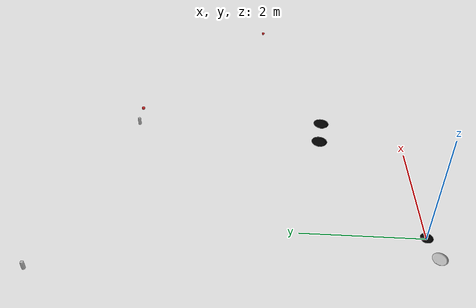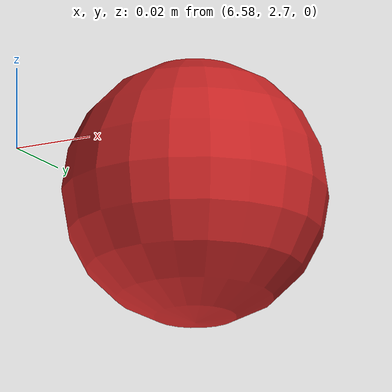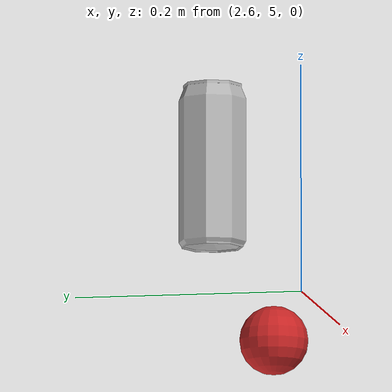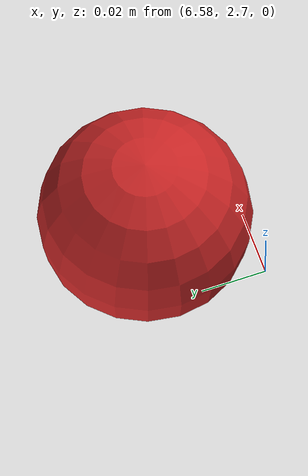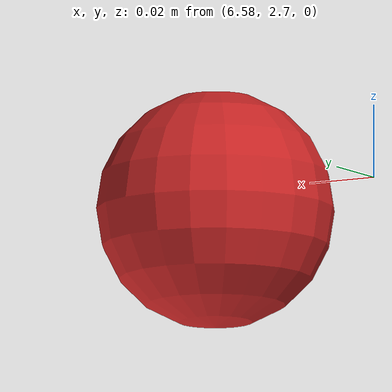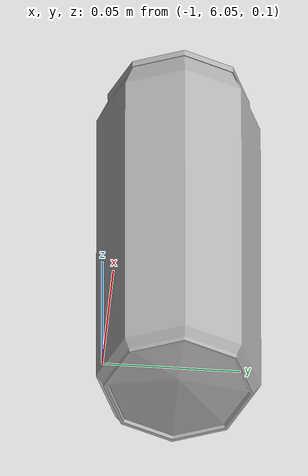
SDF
<?xml version='1.0'?>
<sdf version='1.7'>
  <model name='Ecoforms_Plant_Container_S14Turquoise1'>
    <link name='link_0'>
      <self_collide>0</self_collide>
      <inertial>
        <pose>0 0 0 0 -0 0</pose>
        <inertia>
          <ixx>1</ixx>
          <ixy>0</ixy>
          <ixz>0</ixz>
          <iyy>1</iyy>
          <iyz>0</iyz>
          <izz>1</izz>
        </inertia>
        <mass>1</mass>
      </inertial>
      <enable_wind>0</enable_wind>
      <kinematic>0</kinematic>
      <pose>0 0 0 0 -0 0</pose>
      <gravity>1</gravity>
      <visual name='visual'>
        <geometry>
          <mesh>
            <uri>/root/practice_ws/models/Ecoforms_Plant_Container_S14Turquoise/meshes/model.obj</uri>
            <scale>1.4 1.4 1.3</scale>
          </mesh>
        </geometry>
        <material>
          <shader type='pixel'>
            <normal_map>__default__</normal_map>
          </shader>
          <script>
            <name>ModelPreview_1::link_0::visual_MATERIAL_</name>
            <uri>__default__</uri>
          </script>
          <ambient>0 0 0 1</ambient>
          <diffuse>0 0 0 1</diffuse>
          <specular>0 0 0 1</specular>
          <emissive>0 0 0 1</emissive>
        </material>
        <pose>0 0 0 0 -0 0</pose>
        <transparency>0</transparency>
        <cast_shadows>1</cast_shadows>
      </visual>
      <collision name='collision_0'>
        <laser_retro>0</laser_retro>
        <max_contacts>10</max_contacts>
        <pose>0 0 0 0 -0 0</pose>
        <geometry>
          <mesh>
            <uri>/root/practice_ws/models/Ecoforms_Plant_Container_S14Turquoise/meshes/model.obj</uri>
            <scale>1 1 1</scale>
          </mesh>
        </geometry>
        <surface>
          <friction>
            <ode>
              <mu>1</mu>
              <mu2>1</mu2>
              <fdir1>0 0 0</fdir1>
              <slip1>0</slip1>
              <slip2>0</slip2>
            </ode>
            <torsional>
              <coefficient>1</coefficient>
              <patch_radius>0</patch_radius>
              <surface_radius>0</surface_radius>
              <use_patch_radius>1</use_patch_radius>
              <ode>
                <slip>0</slip>
              </ode>
            </torsional>
          </friction>
          <bounce>
            <restitution_coefficient>0</restitution_coefficient>
            <threshold>1e+06</threshold>
          </bounce>
          <contact>
            <collide_without_contact>0</collide_without_contact>
            <collide_without_contact_bitmask>1</collide_without_contact_bitmask>
            <collide_bitmask>1</collide_bitmask>
            <ode>
              <soft_cfm>0</soft_cfm>
              <soft_erp>0.2</soft_erp>
              <kp>1e+13</kp>
              <kd>1</kd>
              <max_vel>0.01</max_vel>
              <min_depth>0</min_depth>
            </ode>
            <bullet>
              <split_impulse>1</split_impulse>
              <split_impulse_penetration_threshold>-0.01</split_impulse_penetration_threshold>
              <soft_cfm>0</soft_cfm>
              <soft_erp>0.2</soft_erp>
              <kp>1e+13</kp>
              <kd>1</kd>
            </bullet>
          </contact>
        </surface>
      </collision>
    </link>
    <link name='link_0_clone_clone'>
      <self_collide>0</self_collide>
      <inertial>
        <pose>0 0 0 0 -0 0</pose>
        <inertia>
          <ixx>1</ixx>
          <ixy>0</ixy>
          <ixz>0</ixz>
          <iyy>1</iyy>
          <iyz>0</iyz>
          <izz>1</izz>
        </inertia>
        <mass>1</mass>
      </inertial>
      <enable_wind>0</enable_wind>
      <kinematic>0</kinematic>
      <pose>2.27715 1.55022 0.00193 0.023311 0.012547 0.000153</pose>
      <gravity>1</gravity>
      <visual name='visual'>
        <geometry>
          <mesh>
            <uri>/root/practice_ws/models/Ecoforms_Plant_Container_S14Turquoise/meshes/model.obj</uri>
            <scale>2 2 1.6</scale>
          </mesh>
        </geometry>
        <material>
          <shader type='pixel'>
            <normal_map>__default__</normal_map>
          </shader>
          <script>
            <name>ModelPreview_1::link_0::visual_MATERIAL_</name>
            <uri>__default__</uri>
          </script>
          <ambient>0 0 0 1</ambient>
          <diffuse>0 0 0 1</diffuse>
          <specular>0 0 0 1</specular>
          <emissive>0 0 0 1</emissive>
        </material>
        <pose>0 0 0 0 -0 0</pose>
        <transparency>0</transparency>
        <cast_shadows>1</cast_shadows>
      </visual>
      <collision name='collision_0'>
        <laser_retro>0</laser_retro>
        <max_contacts>10</max_contacts>
        <pose>0 0 0 0 -0 0</pose>
        <geometry>
          <mesh>
            <uri>/root/practice_ws/models/Ecoforms_Plant_Container_S14Turquoise/meshes/model.obj</uri>
            <scale>1 1 1</scale>
          </mesh>
        </geometry>
        <surface>
          <friction>
            <ode>
              <mu>1</mu>
              <mu2>1</mu2>
              <fdir1>0 0 0</fdir1>
              <slip1>0</slip1>
              <slip2>0</slip2>
            </ode>
            <torsional>
              <coefficient>1</coefficient>
              <patch_radius>0</patch_radius>
              <surface_radius>0</surface_radius>
              <use_patch_radius>1</use_patch_radius>
              <ode>
                <slip>0</slip>
              </ode>
            </torsional>
          </friction>
          <bounce>
            <restitution_coefficient>0</restitution_coefficient>
            <threshold>1e+06</threshold>
          </bounce>
          <contact>
            <collide_without_contact>0</collide_without_contact>
            <collide_without_contact_bitmask>1</collide_without_contact_bitmask>
            <collide_bitmask>1</collide_bitmask>
            <ode>
              <soft_cfm>0</soft_cfm>
              <soft_erp>0.2</soft_erp>
              <kp>1e+13</kp>
              <kd>1</kd>
              <max_vel>0.01</max_vel>
              <min_depth>0</min_depth>
            </ode>
            <bullet>
              <split_impulse>1</split_impulse>
              <split_impulse_penetration_threshold>-0.01</split_impulse_penetration_threshold>
              <soft_cfm>0</soft_cfm>
              <soft_erp>0.2</soft_erp>
              <kp>1e+13</kp>
              <kd>1</kd>
            </bullet>
          </contact>
        </surface>
      </collision>
    </link>
    <link name='link_0_clone_clone_clone'>
      <self_collide>0</self_collide>
      <inertial>
        <pose>0 0 0 0 -0 0</pose>
        <inertia>
          <ixx>1</ixx>
          <ixy>0</ixy>
          <ixz>0</ixz>
          <iyy>1</iyy>
          <iyz>0</iyz>
          <izz>1</izz>
        </inertia>
        <mass>1</mass>
      </inertial>
      <enable_wind>0</enable_wind>
      <kinematic>0</kinematic>
      <pose>2.84293 1.48428 0.001392 0.034969 0.018818 0.000339</pose>
      <gravity>1</gravity>
      <visual name='visual'>
        <geometry>
          <mesh>
            <uri>/root/practice_ws/models/Ecoforms_Plant_Container_S14Turquoise/meshes/model.obj</uri>
            <scale>2 2 1.6</scale>
          </mesh>
        </geometry>
        <material>
          <shader type='pixel'>
            <normal_map>__default__</normal_map>
          </shader>
          <script>
            <name>ModelPreview_1::link_0::visual_MATERIAL_</name>
            <uri>__default__</uri>
          </script>
          <ambient>0 0 0 1</ambient>
          <diffuse>0 0 0 1</diffuse>
          <specular>0 0 0 1</specular>
          <emissive>0 0 0 1</emissive>
        </material>
        <pose>0 0 0 0 -0 0</pose>
        <transparency>0</transparency>
        <cast_shadows>1</cast_shadows>
      </visual>
      <collision name='collision_0'>
        <laser_retro>0</laser_retro>
        <max_contacts>10</max_contacts>
        <pose>0 0 0 0 -0 0</pose>
        <geometry>
          <mesh>
            <uri>/root/practice_ws/models/Ecoforms_Plant_Container_S14Turquoise/meshes/model.obj</uri>
            <scale>1 1 1</scale>
          </mesh>
        </geometry>
        <surface>
          <friction>
            <ode>
              <mu>1</mu>
              <mu2>1</mu2>
              <fdir1>0 0 0</fdir1>
              <slip1>0</slip1>
              <slip2>0</slip2>
            </ode>
            <torsional>
              <coefficient>1</coefficient>
              <patch_radius>0</patch_radius>
              <surface_radius>0</surface_radius>
              <use_patch_radius>1</use_patch_radius>
              <ode>
                <slip>0</slip>
              </ode>
            </torsional>
          </friction>
          <bounce>
            <restitution_coefficient>0</restitution_coefficient>
            <threshold>1e+06</threshold>
          </bounce>
          <contact>
            <collide_without_contact>0</collide_without_contact>
            <collide_without_contact_bitmask>1</collide_without_contact_bitmask>
            <collide_bitmask>1</collide_bitmask>
            <ode>
              <soft_cfm>0</soft_cfm>
              <soft_erp>0.2</soft_erp>
              <kp>1e+13</kp>
              <kd>1</kd>
              <max_vel>0.01</max_vel>
              <min_depth>0</min_depth>
            </ode>
            <bullet>
              <split_impulse>1</split_impulse>
              <split_impulse_penetration_threshold>-0.01</split_impulse_penetration_threshold>
              <soft_cfm>0</soft_cfm>
              <soft_erp>0.2</soft_erp>
              <kp>1e+13</kp>
              <kd>1</kd>
            </bullet>
          </contact>
        </surface>
      </collision>
    </link>
    <model name='Coke'>
      <static>0</static>
      <link name='body'>
        <pose>0 0 0 0 -0 0</pose>
        <visual name='visual'>
          <geometry>
            <mesh>
              <uri>model://Coke/meshes/coke.obj</uri>
            </mesh>
          </geometry>
        </visual>
        <collision name='collision'>
          <geometry>
            <mesh>
              <uri>model://Coke/meshes/coke.obj</uri>
            </mesh>
          </geometry>
        </collision>
        <inertial>
          <mass>0.03</mass>
          <inertia>
            <ixx>0.00336667</ixx>
            <ixy>0</ixy>
            <ixz>0</ixz>
            <iyy>0.000866667</iyy>
            <iyz>0</iyz>
            <izz>0.00416667</izz>
          </inertia>
        </inertial>
      </link>
      <pose>2.61423 5.08113 0.04282 0 -0 0</pose>
    </model>
    <model name='Coke_0'>
      <static>0</static>
      <link name='body'>
        <pose>0 0 0 0 -0 0</pose>
        <visual name='visual'>
          <geometry>
            <mesh>
              <uri>model://Coke/meshes/coke.obj</uri>
            </mesh>
          </geometry>
        </visual>
        <collision name='collision'>
          <geometry>
            <mesh>
              <uri>model://Coke/meshes/coke.obj</uri>
            </mesh>
          </geometry>
        </collision>
        <inertial>
          <mass>0.03</mass>
          <inertia>
            <ixx>0.00336667</ixx>
            <ixy>0</ixy>
            <ixz>0</ixz>
            <iyy>0.000866667</iyy>
            <iyz>0</iyz>
            <izz>0.00416667</izz>
          </inertia>
        </inertial>
      </link>
      <pose>-0.987178 6.0767 0.077021 0 -0 0</pose>
    </model>
    <model name='Ecoforms_Plant_Container_S14Turquoise'>
      <link name='link_0'>
        <visual name='visual'>
          <geometry>
            <mesh>
              <uri>meshes/model.obj</uri>
            </mesh>
          </geometry>
        </visual>
        <collision name='collision_0'>
          <geometry>
            <mesh>
              <uri>meshes/model.obj</uri>
            </mesh>
          </geometry>
          <max_contacts>10</max_contacts>
          <surface>
            <contact>
              <ode/>
            </contact>
            <bounce/>
            <friction>
              <torsional>
                <ode/>
              </torsional>
              <ode/>
            </friction>
          </surface>
        </collision>
        <self_collide>0</self_collide>
        <inertial>
          <pose>0 0 0 0 -0 0</pose>
          <inertia>
            <ixx>1</ixx>
            <ixy>0</ixy>
            <ixz>0</ixz>
            <iyy>1</iyy>
            <iyz>0</iyz>
            <izz>1</izz>
          </inertia>
          <mass>1</mass>
        </inertial>
        <enable_wind>0</enable_wind>
        <kinematic>0</kinematic>
      </link>
      <pose>-0.399833 -0.119244 0.001119 0 -0 0</pose>
    </model>
    <model name='orange_ball'>
      <link name='ball'>
        <inertial>
          <mass>0.03</mass>
          <inertia>
            <ixx>1.268e-05</ixx>
            <iyy>1.268e-05</iyy>
            <izz>1.268e-05</izz>
            <ixy>0</ixy>
            <ixz>0</ixz>
            <iyz>0</iyz>
          </inertia>
          <pose>0 0 0 0 -0 0</pose>
        </inertial>
        <self_collide>0</self_collide>
        <enable_wind>0</enable_wind>
        <kinematic>0</kinematic>
        <pose>0 0 0 0 -0 0</pose>
        <gravity>1</gravity>
        <visual name='visual'>
          <geometry>
            <sphere>
              <radius>0.0325</radius>
            </sphere>
          </geometry>
          <material>
            <script>
              <uri>file://media/materials/scripts/gazebo.material</uri>
              <name>Gazebo/RedBright</name>
            </script>
            <shader type='pixel'>
              <normal_map>__default__</normal_map>
            </shader>
          </material>
          <pose>0 0 0 0 -0 0</pose>
          <transparency>0</transparency>
          <cast_shadows>1</cast_shadows>
        </visual>
        <collision name='collision'>
          <laser_retro>0</laser_retro>
          <max_contacts>10</max_contacts>
          <pose>0 0 0 0 -0 0</pose>
          <geometry>
            <sphere>
              <radius>0.0325</radius>
            </sphere>
          </geometry>
          <surface>
            <friction>
              <ode>
                <mu>1</mu>
                <mu2>1</mu2>
                <fdir1>0 0 0</fdir1>
                <slip1>0</slip1>
                <slip2>0</slip2>
              </ode>
              <torsional>
                <coefficient>1</coefficient>
                <patch_radius>0</patch_radius>
                <surface_radius>0</surface_radius>
                <use_patch_radius>1</use_patch_radius>
                <ode>
                  <slip>0</slip>
                </ode>
              </torsional>
            </friction>
            <bounce>
              <restitution_coefficient>0</restitution_coefficient>
              <threshold>1e+06</threshold>
            </bounce>
            <contact>
              <collide_without_contact>0</collide_without_contact>
              <collide_without_contact_bitmask>1</collide_without_contact_bitmask>
              <collide_bitmask>1</collide_bitmask>
              <ode>
                <soft_cfm>0</soft_cfm>
                <soft_erp>0.2</soft_erp>
                <kp>1e+13</kp>
                <kd>1</kd>
                <max_vel>0.01</max_vel>
                <min_depth>0</min_depth>
              </ode>
              <bullet>
                <split_impulse>1</split_impulse>
                <split_impulse_penetration_threshold>-0.01</split_impulse_penetration_threshold>
                <soft_cfm>0</soft_cfm>
                <soft_erp>0.2</soft_erp>
                <kp>1e+13</kp>
                <kd>1</kd>
              </bullet>
            </contact>
          </surface>
        </collision>
      </link>
      <static>0</static>
      <allow_auto_disable>1</allow_auto_disable>
      <pose>3.15033 5.12108 0.039922 0 -0 0</pose>
    </model>
    <model name='orange_ball_0'>
      <link name='ball'>
        <inertial>
          <mass>0.03</mass>
          <inertia>
            <ixx>1.268e-05</ixx>
            <iyy>1.268e-05</iyy>
            <izz>1.268e-05</izz>
            <ixy>0</ixy>
            <ixz>0</ixz>
            <iyz>0</iyz>
          </inertia>
          <pose>0 0 0 0 -0 0</pose>
        </inertial>
        <self_collide>0</self_collide>
        <enable_wind>0</enable_wind>
        <kinematic>0</kinematic>
        <pose>0 0 0 0 -0 0</pose>
        <gravity>1</gravity>
        <visual name='visual'>
          <geometry>
            <sphere>
              <radius>0.0325</radius>
            </sphere>
          </geometry>
          <material>
            <script>
              <uri>file://media/materials/scripts/gazebo.material</uri>
              <name>Gazebo/RedBright</name>
            </script>
            <shader type='pixel'>
              <normal_map>__default__</normal_map>
            </shader>
          </material>
          <pose>0 0 0 0 -0 0</pose>
          <transparency>0</transparency>
          <cast_shadows>1</cast_shadows>
        </visual>
        <collision name='collision'>
          <laser_retro>0</laser_retro>
          <max_contacts>10</max_contacts>
          <pose>0 0 0 0 -0 0</pose>
          <geometry>
            <sphere>
              <radius>0.0325</radius>
            </sphere>
          </geometry>
          <surface>
            <friction>
              <ode>
                <mu>1</mu>
                <mu2>1</mu2>
                <fdir1>0 0 0</fdir1>
                <slip1>0</slip1>
                <slip2>0</slip2>
              </ode>
              <torsional>
                <coefficient>1</coefficient>
                <patch_radius>0</patch_radius>
                <surface_radius>0</surface_radius>
                <use_patch_radius>1</use_patch_radius>
                <ode>
                  <slip>0</slip>
                </ode>
              </torsional>
            </friction>
            <bounce>
              <restitution_coefficient>0</restitution_coefficient>
              <threshold>1e+06</threshold>
            </bounce>
            <contact>
              <collide_without_contact>0</collide_without_contact>
              <collide_without_contact_bitmask>1</collide_without_contact_bitmask>
              <collide_bitmask>1</collide_bitmask>
              <ode>
                <soft_cfm>0</soft_cfm>
                <soft_erp>0.2</soft_erp>
                <kp>1e+13</kp>
                <kd>1</kd>
                <max_vel>0.01</max_vel>
                <min_depth>0</min_depth>
              </ode>
              <bullet>
                <split_impulse>1</split_impulse>
                <split_impulse_penetration_threshold>-0.01</split_impulse_penetration_threshold>
                <soft_cfm>0</soft_cfm>
                <soft_erp>0.2</soft_erp>
                <kp>1e+13</kp>
                <kd>1</kd>
              </bullet>
            </contact>
          </surface>
        </collision>
      </link>
      <static>0</static>
      <allow_auto_disable>1</allow_auto_disable>
      <pose>6.61479 2.72581 -0.009734 0 -0 0</pose>
    </model>
    <static>0</static>
    <allow_auto_disable>1</allow_auto_disable>
  </model>
</sdf>
